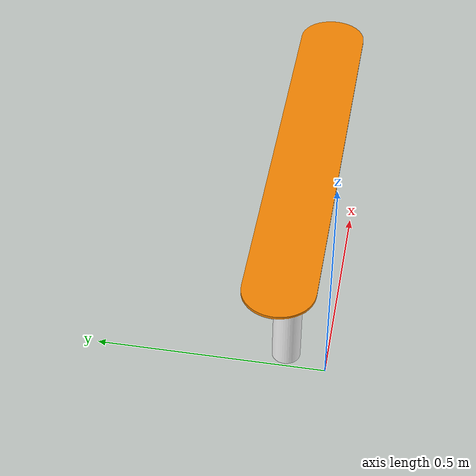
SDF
<?xml version="1.0" encoding="UTF-8"?>

<sdf version="1.10">
    <model name="PathMarker">
        <cast_shadows>false</cast_shadows>
        <link name="link">
            <cast_shadows>false</cast_shadows>
            <collision name="collision">
                <geometry>
                    <mesh>
                        <uri>meshes/PathMarker.dae</uri>
                        <scale>1 1 1</scale>
                    </mesh>
                </geometry>
            </collision>

            <visual name="visual">
                <geometry>
                    <mesh>
                        <uri>meshes/PathMarker.dae</uri>
                        <scale>1 1 1</scale>
                    </mesh>
                </geometry>
                <cast_shadows>false</cast_shadows>
            </visual>
        </link>
        <static>true</static>
    </model>
</sdf>
